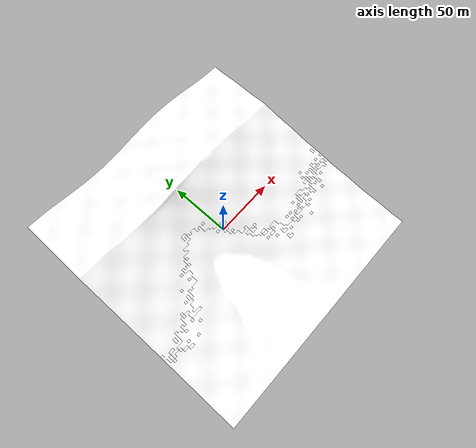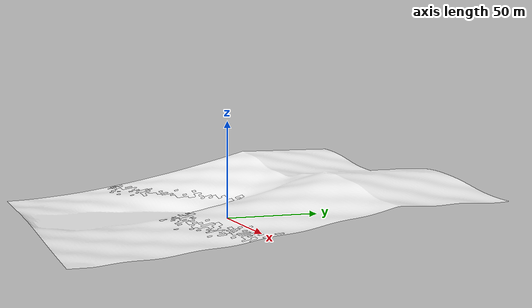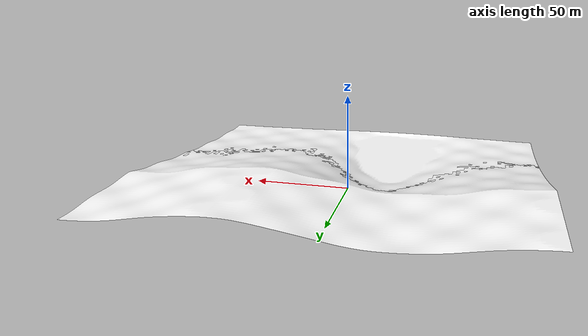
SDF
<?xml version="1.0"?>
<sdf version="1.9">
  <model name="aero_sense_terrain">
    <static>true</static>
    <link name="link">
      <collision name="collision">
        <geometry><mesh><uri>model://aero_sense_terrain/meshes/terrain_collision.obj</uri></mesh></geometry>
      </collision>
      <visual name="slope">
        <geometry><mesh><uri>model://aero_sense_terrain/meshes/terrain_slope.obj</uri></mesh></geometry>
        <material>
          <diffuse>1 1 1 1</diffuse>
          <pbr><metal>
            <albedo_map>model://gazebo_models_worlds_collection-master/models/cyberzoo/cyberzoo_floor/grass_green.png</albedo_map>
            <roughness>0.95</roughness><metalness>0</metalness>
          </metal></pbr>
        </material>
        <plugin filename="gz-sim-thermal-system" name="gz::sim::systems::Thermal">
          <temperature>297</temperature>
        </plugin>
      </visual>
      <visual name="scar">
        <geometry><mesh><uri>model://aero_sense_terrain/meshes/terrain_scar.obj</uri></mesh></geometry>
        <material>
          <diffuse>1 1 1 1</diffuse>
          <pbr><metal>
            <albedo_map>model://tdf_gazebo-main/models/collapsed_industrial/materials/textures/rubble_diffuse.jpg</albedo_map>
            <roughness>1.0</roughness><metalness>0</metalness>
          </metal></pbr>
        </material>
        <plugin filename="gz-sim-thermal-system" name="gz::sim::systems::Thermal">
          <temperature>299</temperature>
        </plugin>
      </visual>
    </link>
  </model>
</sdf>
